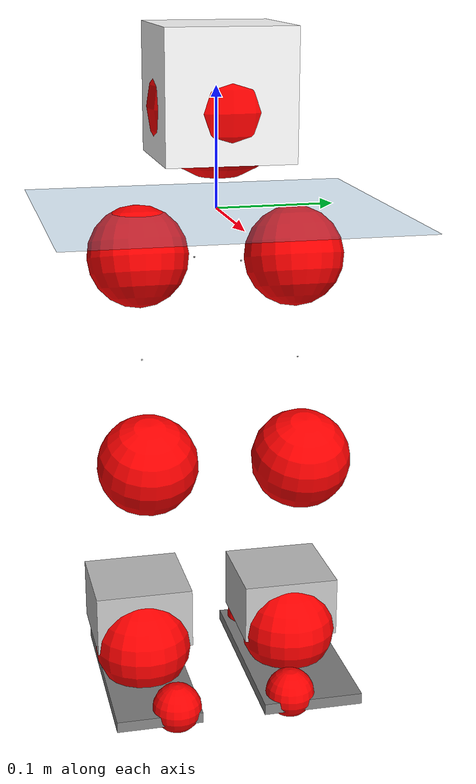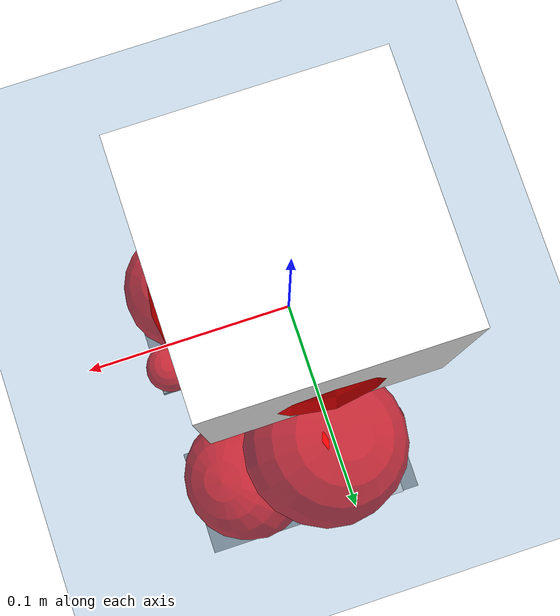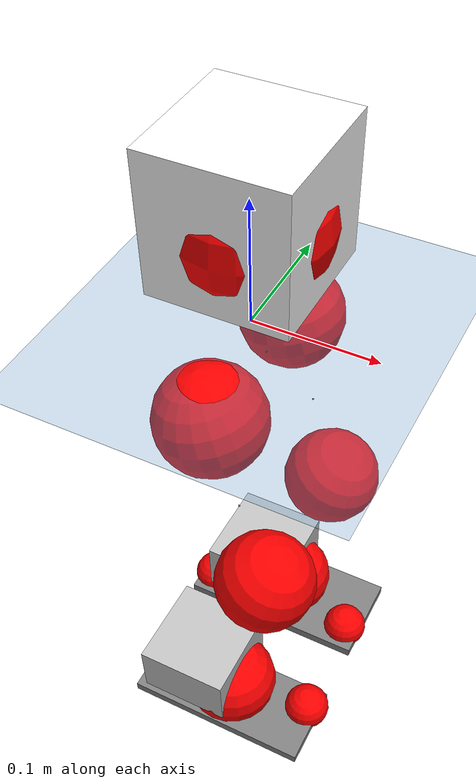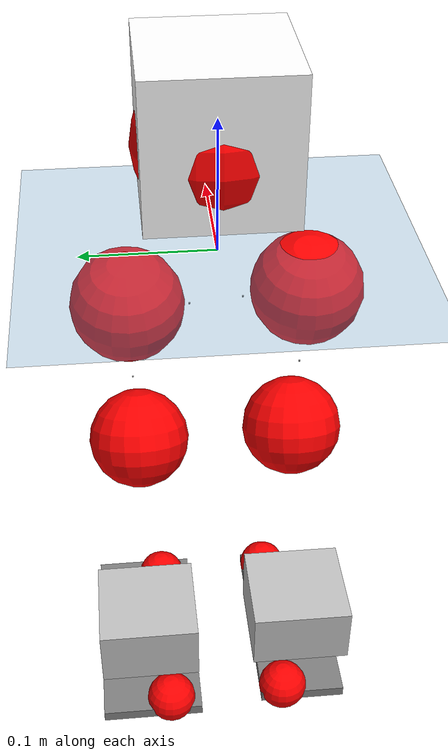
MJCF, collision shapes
<mujoco model="pi_12dof_release_v1">
  <compiler angle="radian" assetdir="assets" balanceinertia="true" inertiafromgeom="false"/>

  <option timestep="0.005" density="1.2" viscosity="2e-05"/>

  <size nkey="1"/>

  <visual>
    <quality shadowsize="8192"/>
    <map shadowclip="0.5"/>
  </visual>

  <default>
    <default class="/">
      <joint armature="0.01" damping="0.01" frictionloss="0.01"/>
      <geom contype="0" conaffinity="0" group="1" solref="-1000 -80"/>
      <site size="0.01 0.005 0.005" group="5"/>
      <general forcelimited="true" biastype="affine" gainprm="20" biasprm="0 -20 -0.5"/>
      <default class="foot">
        <geom size="0.0845 0.036 0.005" type="box" condim="6" group="4" priority="1" friction="0.9 0.2 0.2" solimp="0.015 1 0.005"/>
      </default>
      <default class="reward_collision_sphere">
        <geom group="5" rgba="1 0 0 1"/>
      </default>
    </default>
  </default>

  <asset>
    <texture type="skybox" colorspace="auto" name="//unnamed_texture_0" builtin="gradient" rgb1="0.95 0.95 0.95" rgb2="0.95 0.95 0.95" width="100" height="600"/>
    <texture type="2d" colorspace="auto" name="texplane" builtin="checker" rgb1="0.345 0.575 0.748" rgb2="0.345 0.575 0.748" markrgb="1 1 1" width="512" height="512"/>
    <material name="MatPlane" class="/" texture="texplane" texuniform="true" texrepeat="2 2" specular="0.9"/>
    <mesh name="baselink_1" class="/" file="baselink_1.STL"/>
    <mesh name="r_hip_pitch_link" class="/" file="r_hip_pitch_link.STL"/>
    <mesh name="r_hip_roll_link" class="/" file="r_hip_roll_link.STL"/>
    <mesh name="r_thigh_link" class="/" file="r_thigh_link.STL"/>
    <mesh name="r_calf_link" class="/" file="r_calf_link.STL"/>
    <mesh name="r_ankle_pitch_link" class="/" file="r_ankle_pitch_link.STL"/>
    <mesh name="r_ankle_roll_link" class="/" file="r_ankle_roll_link.STL"/>
    <mesh name="l_hip_pitch_link" class="/" file="l_hip_pitch_link.STL"/>
    <mesh name="l_hip_roll_link" class="/" file="l_hip_roll_link.STL"/>
    <mesh name="l_thigh_link" class="/" file="l_thigh_link.STL"/>
    <mesh name="l_calf_link" class="/" file="l_calf_link.STL"/>
    <mesh name="l_ankle_pitch_link" class="/" file="l_ankle_pitch_link.STL"/>
    <mesh name="l_ankle_roll_link" class="/" file="l_ankle_roll_link.STL"/>
  </asset>

  <worldbody>
    <geom name="floor" class="/" size="100 100 0.125" type="plane" group="0" material="MatPlane"/>
    <light name="toplight_shadow" class="/" pos="0 0 5" dir="0.0990148 0.0990148 -0.990148" type="directional" ambient="0.04 0.04 0.04" diffuse="0.55 0.55 0.55" specular="0.12 0.12 0.12"/>
    <light name="toplight_fill" class="/" pos="0 0 5" dir="0.0990148 0.0990148 -0.990148" type="directional" castshadow="false" ambient="0.04 0.04 0.04" diffuse="0.3 0.3 0.3" specular="0.08 0.08 0.08"/>
    <body name="trunk" pos="0.000815028 0.00102917 -0.00257564" quat="1 -0.000470378 -0.000563166 -0.000333153">
      <inertial pos="0.00142568 0.00189724 0.0500622" quat="0.695336 0.00909367 0.00964924 0.718563" mass="2.66864" diaginertia="0.0177276 0.00409871 0.0121929"/>
      <joint name="//unnamed_joint_0" type="free"/>
      <geom name="//unnamed_geom_1" class="/" type="mesh" density="0" rgba="1 1 1 1" mesh="baselink_1"/>
      <geom name="//unnamed_geom_2" class="/" size="0.0532859 0.0532859 0.0532859" pos="0 0 0.0981906" type="box" rgba="1 1 1 1"/>
      <geom name="//unnamed_geom_3" class="reward_collision_sphere" size="0.0586145" pos="0 0 0.0859168"/>
      <site name="imu" class="/" pos="0.00523674 0.0138919 0.00912378" size="0.0106572"/>
      <camera name="track" class="/" pos="0 -1.6999 0" quat="0.707107 0.707107 0 0" mode="trackcom"/>
      <camera name="ego_camera" class="/" pos="0.0839865 0 0.220929" quat="-0.5 -0.5 0.5 0.5"/>
      <body name="r_hip_pitch_link" pos="-0.000611681 -0.0198805 -0.0379472" quat="0.992167 0.000849054 -0.124911 -0.00089393">
        <inertial pos="0.00159194 -0.0500875 0.000500546" quat="-0.0194414 0.702494 -0.0293761 0.710818" mass="0.435463" diaginertia="0.000193847 4.51835e-05 0.000232085"/>
        <joint name="r_hip_pitch_joint" class="/" pos="0 0 0" axis="-0.0107649 -0.999884 0.0108012" range="-1.80343 1.23932" armature="0.00987647" damping="0.0239177" frictionloss="0.0120825"/>
        <geom name="//unnamed_geom_4" class="/" type="mesh" density="0" rgba="0.75294 0.75294 0.75294 1" mesh="r_hip_pitch_link"/>
        <geom name="//unnamed_geom_5" class="/" size="0.000532859 0.000532859 0.000532859" type="box" rgba="0.75294 0.75294 0.75294 1"/>
        <body name="r_hip_roll_link" pos="0.00315095 -0.0482323 0.00253063" quat="0.999999 -0.000122151 -0.00114586 -0.000284731">
          <inertial pos="0.00105207 -0.00273363 -0.0764098" quat="0.705925 -0.0790844 -0.0824152 0.699016" mass="0.459898" diaginertia="0.000587491 0.000117668 0.00034813"/>
          <joint name="r_hip_roll_joint" class="/" pos="0 0 0" axis="-0.999919 0.011864 -0.00469576" range="-0.138245 0.442863" armature="0.00951233" damping="0.00487467" frictionloss="0.0118905"/>
          <geom name="//unnamed_geom_6" class="/" type="mesh" density="0" rgba="0.75294 0.75294 0.75294 1" mesh="r_hip_roll_link"/>
          <geom name="//unnamed_geom_7" class="/" size="0.000532859 0.000532859 0.000532859" type="box" rgba="0.75294 0.75294 0.75294 1"/>
          <geom name="//unnamed_geom_8" class="reward_collision_sphere" size="0.0426287"/>
          <body name="r_thigh_link" pos="-2.26012e-05 -0.00162377 -0.0856219" quat="0.999999 0.00101613 0.000947515 7.69351e-05">
            <inertial pos="-0.00224054 0.0002 -0.0554586" quat="0.734046 0.679032 0.00299773 -0.00909874" mass="0.136174" diaginertia="0.000213844 4.38009e-05 0.000165292"/>
            <joint name="r_thigh_joint" class="/" pos="0 0 0" axis="-0.00362767 0.00174504 -0.999992" range="-0.351655 0.651187" armature="0.00928751" damping="0.00809494" frictionloss="0.0102509"/>
            <geom name="//unnamed_geom_9" class="/" type="mesh" density="0" rgba="0.75294 0.75294 0.75294 1" mesh="r_thigh_link"/>
            <geom name="//unnamed_geom_10" class="/" size="0.000532859 0.000532859 0.000532859" type="box" rgba="0.75294 0.75294 0.75294 1"/>
            <body name="r_calf_link" pos="0.000266248 -0.000314817 -0.0879838" quat="0.947889 0.000432736 0.318599 0.000863692">
              <inertial pos="0.00215378 -0.00296399 -0.0862043" quat="0.999924 -0.00790192 -0.00943348 0.000469838" mass="0.979575" diaginertia="0.00578546 0.00149745 0.000452537"/>
              <joint name="r_calf_joint" class="/" pos="0 0 0" axis="0.0119481 -0.99991 0.00602393" range="-1.62798 0.666162" armature="0.0107635" damping="0.00918601" frictionloss="0.0120493"/>
              <geom name="//unnamed_geom_11" class="/" type="mesh" density="0" rgba="0.75294 0.75294 0.75294 1" mesh="r_calf_link"/>
              <geom name="//unnamed_geom_12" class="/" size="0.000532859 0.000532859 0.000532859" type="box" rgba="0.75294 0.75294 0.75294 1"/>
              <geom name="//unnamed_geom_13" class="reward_collision_sphere" size="0.0426287"/>
              <body name="r_ankle_pitch_link" pos="0.00160948 -0.00141631 -0.171606" quat="0.980085 0.000171615 -0.19858 -0.000207497">
                <inertial pos="0.00813137 0.000432345 0.000843001" quat="0.0129941 0.700558 -0.00180687 0.713475" mass="0.213271" diaginertia="0.0005308 9.32526e-05 0.000332102"/>
                <joint name="r_ankle_pitch_joint" class="/" pos="0 0 0" axis="0.00697397 -0.999976 -0.000572506" stiffness="0.00115463" range="-1.24741 0.49577" armature="0.0101584" damping="0" frictionloss="0.0121553"/>
                <geom name="//unnamed_geom_14" class="/" type="mesh" density="0" rgba="0.75294 0.75294 0.75294 1" mesh="r_ankle_pitch_link"/>
                <geom name="//unnamed_geom_15" class="/" size="0.041563 0.0426287 0.026643" type="box" rgba="0.75294 0.75294 0.75294 1"/>
                <body name="r_ankle_roll_link" pos="0.0855506 -0.000554908 -0.00181947" quat="1 -0.000133411 6.84949e-05 -0.000352062">
                  <inertial pos="-0.0272505 -0.00112418 -0.0174971" quat="0.562379 0.437477 0.429596 0.554789" mass="0.633319" diaginertia="0.00199887 0.000457238 0.000761612"/>
                  <joint name="r_ankle_roll_joint" class="/" pos="0 0 0" axis="-0.99998 0.00468931 0.00427557" stiffness="0.00980988" range="-0.183005 0.128283" armature="0.011604" damping="0.0099107" frictionloss="0.0104059"/>
                  <geom name="//unnamed_geom_16" class="/" type="mesh" density="0" rgba="0.75294 0.75294 0.75294 1" mesh="r_ankle_roll_link"/>
                  <geom name="//unnamed_geom_17" class="/" type="mesh" rgba="0.75294 0.75294 0.75294 1" mesh="r_ankle_roll_link"/>
                  <geom name="right_foot" class="foot" size="0.0869188 0.0369817 0.00469524" pos="-0.0571108 0 -0.0540048"/>
                  <geom name="//unnamed_geom_19" class="reward_collision_sphere" size="0.0426287" pos="-0.055991 0 -0.0245477"/>
                  <geom name="//unnamed_geom_20" class="reward_collision_sphere" size="0.0213144" pos="0.0167973 0.016999 -0.0490953"/>
                  <geom name="//unnamed_geom_21" class="reward_collision_sphere" size="0.0213144" pos="-0.134378 0.016999 -0.0490953"/>
                  <site name="right_foot" class="foot" pos="-0.0571108 0 -0.0540048" size="0.0106572"/>
                </body>
              </body>
            </body>
          </body>
        </body>
      </body>
      <body name="l_hip_pitch_link" pos="0.00102676 0.0199173 -0.0425627" quat="0.992235 -0.000326368 -0.124374 -0.000102829">
        <inertial pos="0.00303556 0.0473161 -0.0029493" quat="-0.0369028 0.70535 0.0271624 0.707377" mass="0.482053" diaginertia="0.000223846 4.69693e-05 0.000287786"/>
        <joint name="l_hip_pitch_joint" class="/" pos="0 0 0" axis="0.00443923 0.999982 0.00401133" range="-1.20949 1.75501" armature="0.0106774" damping="0.0253853" frictionloss="0.0107459"/>
        <geom name="//unnamed_geom_22" class="/" type="mesh" density="0" rgba="0.75294 0.75294 0.75294 1" mesh="l_hip_pitch_link"/>
        <geom name="//unnamed_geom_23" class="/" size="0.000532859 0.000532859 0.000532859" type="box" rgba="0.75294 0.75294 0.75294 1"/>
        <body name="l_hip_roll_link" pos="0.000339219 0.0458399 0.00223615" quat="1 7.1231e-05 -0.000360958 -9.35414e-05">
          <inertial pos="-0.00179519 0.000290143 -0.0750495" quat="0.69883 -0.0840408 -0.0747857 0.706385" mass="0.484124" diaginertia="0.000588681 0.000124229 0.000375411"/>
          <joint name="l_hip_roll_joint" class="/" pos="0 0 0" axis="-0.999937 0.0105684 -0.00373369" stiffness="0.00377463" range="-0.484134 0.167706" armature="0.00950609" damping="0.00823345" frictionloss="0.00969173"/>
          <geom name="//unnamed_geom_24" class="/" type="mesh" density="0" rgba="0.75294 0.75294 0.75294 1" mesh="l_hip_roll_link"/>
          <geom name="//unnamed_geom_25" class="/" size="0.000532859 0.000532859 0.000532859" type="box" rgba="0.75294 0.75294 0.75294 1"/>
          <geom name="//unnamed_geom_26" class="reward_collision_sphere" size="0.0426287"/>
          <body name="l_thigh_link" pos="0.000677379 -0.000907002 -0.0860485" quat="1 -0.000110175 -2.18922e-05 -4.71958e-05">
            <inertial pos="-0.00135053 -0.000264255 -0.0585614" quat="0.679896 0.733206 0.00749786 -0.00966365" mass="0.139523" diaginertia="0.000216895 4.23719e-05 0.000162713"/>
            <joint name="l_thigh_joint" class="/" pos="0 0 0" axis="0.00898111 -0.00673661 -0.999937" stiffness="0.0105654" range="-0.613956 0.35429" armature="0.0119514" damping="0" frictionloss="0.0121134"/>
            <geom name="//unnamed_geom_27" class="/" type="mesh" density="0" rgba="0.75294 0.75294 0.75294 1" mesh="l_thigh_link"/>
            <geom name="//unnamed_geom_28" class="/" size="0.000532859 0.000532859 0.000532859" type="box" rgba="0.75294 0.75294 0.75294 1"/>
            <body name="l_calf_link" pos="0.00138419 -0.00246796 -0.0866546" quat="0.947854 0.000158162 0.318705 -0.000187164">
              <inertial pos="0.00163148 0.00532772 -0.0867172" quat="0.999914 0.0021074 0.0129554 0.000313993" mass="0.985246" diaginertia="0.00621391 0.00156657 0.000493619"/>
              <joint name="l_calf_joint" class="/" pos="0 0 0" axis="-0.00377917 0.99993 -0.0111879" range="-0.636178 1.59646" armature="0.0113059" damping="0.00680022" frictionloss="0.00947096"/>
              <geom name="//unnamed_geom_29" class="/" type="mesh" density="0" rgba="0.75294 0.75294 0.75294 1" mesh="l_calf_link"/>
              <geom name="//unnamed_geom_30" class="/" size="0.000532859 0.000532859 0.000532859" type="box" rgba="0.75294 0.75294 0.75294 1"/>
              <geom name="//unnamed_geom_31" class="reward_collision_sphere" size="0.0426287"/>
              <body name="l_ankle_pitch_link" pos="-0.000954073 0.0021527 -0.172716" quat="0.980065 5.94337e-06 -0.198679 -1.55511e-06">
                <inertial pos="0.00610949 -0.000205055 0.000284574" quat="-0.00118499 0.707206 0.0034153 0.706998" mass="0.207589" diaginertia="0.000545262 0.000102083 0.000336083"/>
                <joint name="l_ankle_pitch_joint" class="/" pos="0 0 0" axis="-0.0027638 0.999995 -0.00123015" range="-0.501557 1.27939" armature="0.0107343" damping="0" frictionloss="0.0119554"/>
                <geom name="//unnamed_geom_32" class="/" type="mesh" density="0" rgba="0.75294 0.75294 0.75294 1" mesh="l_ankle_pitch_link"/>
                <geom name="//unnamed_geom_33" class="/" size="0.041563 0.0426287 0.026643" type="box" rgba="0.75294 0.75294 0.75294 1"/>
                <body name="l_ankle_roll_link" pos="0.0841172 1.91451e-05 0.00265838" quat="1 0.000477012 -0.000406822 0.000193459">
                  <inertial pos="-0.0297289 -0.00124875 -0.0171842" quat="0.571153 0.427519 0.428026 0.554802" mass="0.634688" diaginertia="0.00203961 0.000454939 0.000810951"/>
                  <joint name="l_ankle_roll_joint" class="/" pos="0 0 0" axis="-0.999978 -0.00417641 -0.00505937" range="-0.15445 0.204263" armature="0.00977137" damping="0.0235462" frictionloss="0.00947969"/>
                  <geom name="//unnamed_geom_34" class="/" type="mesh" density="0" rgba="0.75294 0.75294 0.75294 1" mesh="l_ankle_roll_link"/>
                  <geom name="//unnamed_geom_35" class="/" type="mesh" rgba="0.75294 0.75294 0.75294 1" mesh="l_ankle_roll_link"/>
                  <geom name="left_foot" class="foot" size="0.0904395 0.0434831 0.00485028" pos="-0.0571108 0 -0.0540048"/>
                  <geom name="//unnamed_geom_37" class="reward_collision_sphere" size="0.0426287" pos="-0.055991 0 -0.0245477"/>
                  <geom name="//unnamed_geom_38" class="reward_collision_sphere" size="0.0213144" pos="0.0167973 -0.016999 -0.0490953"/>
                  <geom name="//unnamed_geom_39" class="reward_collision_sphere" size="0.0213144" pos="-0.134378 -0.016999 -0.0490953"/>
                  <site name="left_foot" class="foot" pos="-0.0571108 0 -0.0540048" size="0.0106572"/>
                </body>
              </body>
            </body>
          </body>
        </body>
      </body>
    </body>
  </worldbody>

  <contact>
    <pair class="/" geom1="floor" geom2="right_foot" name="//unnamed_contact_1"/>
    <pair class="/" geom1="floor" geom2="left_foot" name="//unnamed_contact_0"/>
  </contact>

  <actuator>
    <general name="r_hip_pitch_joint" class="/" joint="r_hip_pitch_joint" forcerange="-22.4725 22.4725" gainprm="20.9506" biasprm="0 -20.9506 -0.569794"/>
    <general name="r_hip_roll_joint" class="/" joint="r_hip_roll_joint" forcerange="-24.7948 24.7948" gainprm="20.9506" biasprm="0 -20.9506 -0.569794"/>
    <general name="r_thigh_joint" class="/" joint="r_thigh_joint" forcerange="-22.766 22.766" gainprm="20.9506" biasprm="0 -20.9506 -0.569794"/>
    <general name="r_calf_joint" class="/" joint="r_calf_joint" forcerange="-23.2141 23.2141" gainprm="20.9506" biasprm="0 -20.9506 -0.569794"/>
    <general name="r_ankle_pitch_joint" class="/" joint="r_ankle_pitch_joint" forcerange="-22.359 22.359" gainprm="20.9506" biasprm="0 -20.9506 -0.569794"/>
    <general name="r_ankle_roll_joint" class="/" joint="r_ankle_roll_joint" forcerange="-20.8625 20.8625" gainprm="20.9506" biasprm="0 -20.9506 -0.569794"/>
    <general name="l_hip_pitch_joint" class="/" joint="l_hip_pitch_joint" forcerange="-22.5921 22.5921" gainprm="20.9506" biasprm="0 -20.9506 -0.569794"/>
    <general name="l_hip_roll_joint" class="/" joint="l_hip_roll_joint" forcerange="-20.1175 20.1175" gainprm="20.9506" biasprm="0 -20.9506 -0.569794"/>
    <general name="l_thigh_joint" class="/" joint="l_thigh_joint" forcerange="-23.0561 23.0561" gainprm="20.9506" biasprm="0 -20.9506 -0.569794"/>
    <general name="l_calf_joint" class="/" joint="l_calf_joint" forcerange="-22.8457 22.8457" gainprm="20.9506" biasprm="0 -20.9506 -0.569794"/>
    <general name="l_ankle_pitch_joint" class="/" joint="l_ankle_pitch_joint" forcerange="-24.6397 24.6397" gainprm="20.9506" biasprm="0 -20.9506 -0.569794"/>
    <general name="l_ankle_roll_joint" class="/" joint="l_ankle_roll_joint" forcerange="-22.0552 22.0552" gainprm="20.9506" biasprm="0 -20.9506 -0.569794"/>
  </actuator>

  <sensor>
    <gyro site="imu" name="imu_angular_velocity"/>
    <velocimeter site="imu" name="imu_linear_velocity"/>
    <framelinvel objtype="site" objname="left_foot" name="left_foot_global_linear_velocity"/>
    <framelinvel objtype="site" objname="right_foot" name="right_foot_global_linear_velocity"/>
  </sensor>

  <keyframe>
    <key name="home" qpos="0 0 0.291 1 0 0 0 0.4 0 0 -0.8 0.4 0 -0.4 0 0 0.8 -0.4 0"/>
  </keyframe>
</mujoco>
